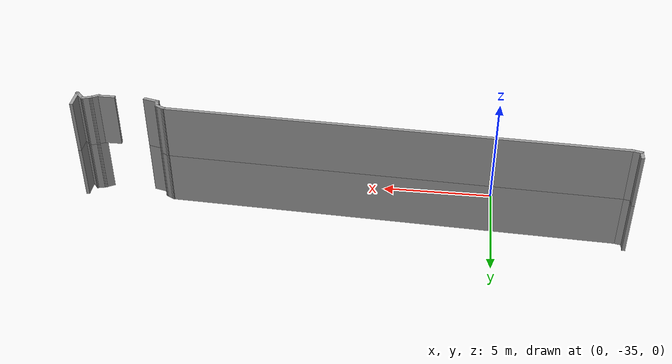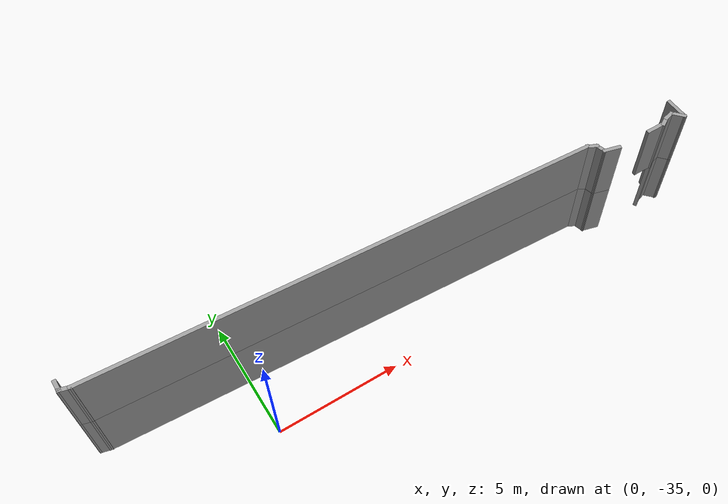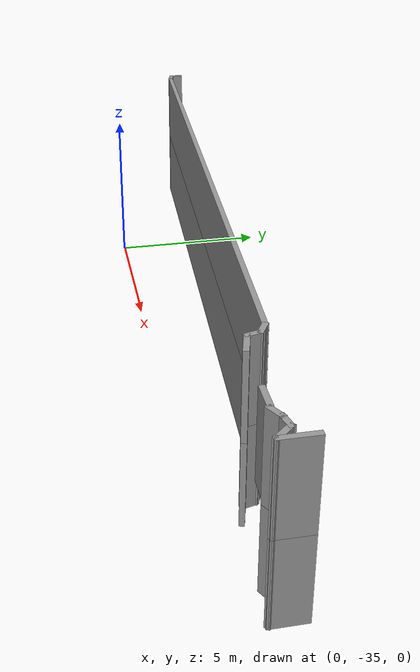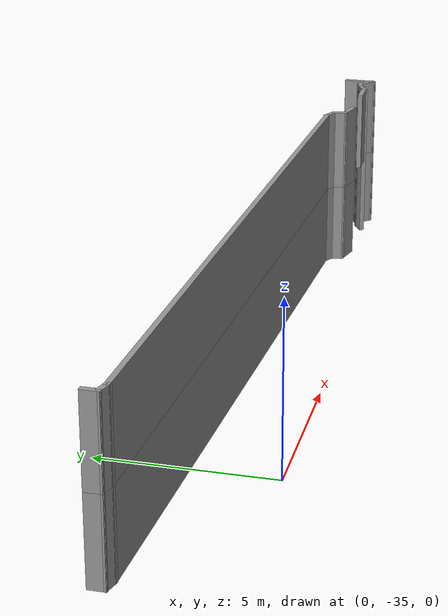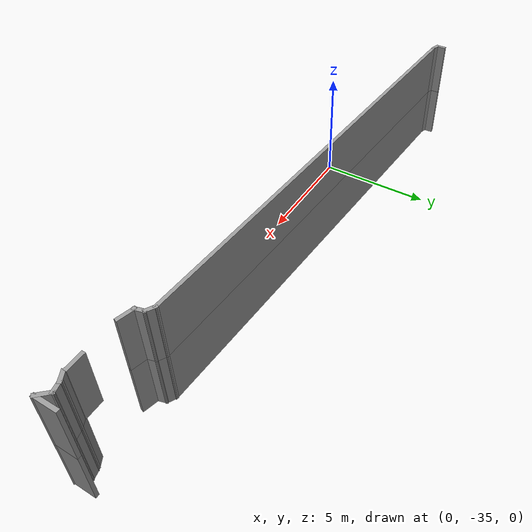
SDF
<sdf version="1.7">
 <model name="EnvDC00">
  <pose>8.4191 -5.62635 0 0 -0 0</pose>
  <link name="Wall_191">
   <collision name="Wall_191_Collision">
    <geometry><box><size>0.5 0.15 2.5</size></box></geometry>
    <pose>0 0 1.25 0 -0 0</pose>
   </collision>
   <visual name="Wall_191_Visual">
    <pose>0 0 1.25 0 -0 0</pose>
    <geometry><box><size>0.5 0.15 2.5</size></box></geometry>
    <material>
     <script><uri>file://media/materials/scripts/gazebo.material</uri><name>Gazebo/Grey</name></script>
     <ambient>1 1 1 1</ambient>
    </material>
    <meta><layer>0</layer></meta>
   </visual>
   <pose>-14.1859 -26.3878 0 0 -0 -1.5708</pose>
  </link>
  <link name="Wall_193">
   <collision name="Wall_193_Collision">
    <geometry><box><size>0.5 0.15 2.5</size></box></geometry>
    <pose>0 0 1.25 0 -0 0</pose>
   </collision>
   <visual name="Wall_193_Visual">
    <pose>0 0 1.25 0 -0 0</pose>
    <geometry><box><size>0.5 0.15 2.5</size></box></geometry>
    <material>
     <script><uri>file://media/materials/scripts/gazebo.material</uri><name>Gazebo/Grey</name></script>
     <ambient>1 1 1 1</ambient>
    </material>
    <meta><layer>0</layer></meta>
   </visual>
   <pose>-14.0168 -26.6081 0 0 -0 -0.261799</pose>
  </link>
  <link name="Wall_194">
   <collision name="Wall_194_Collision">
    <geometry><box><size>20.2208 0.15 2.5</size></box></geometry>
    <pose>0 0 1.25 0 -0 0</pose>
   </collision>
   <visual name="Wall_194_Visual">
    <pose>0 0 1.25 0 -0 0</pose>
    <geometry><box><size>20.2208 0.15 2.5</size></box></geometry>
    <material>
     <script><uri>file://media/materials/scripts/gazebo.material</uri><name>Gazebo/Grey</name></script>
     <ambient>1 1 1 1</ambient>
    </material>
    <meta><layer>0</layer></meta>
   </visual>
   <pose>-3.82435 -27.1433 0 0 -0 -0.048839</pose>
  </link>
  <link name="Wall_195">
   <collision name="Wall_195_Collision">
    <geometry><box><size>0.5 0.15 2.5</size></box></geometry>
    <pose>0 0 1.25 0 -0 0</pose>
   </collision>
   <visual name="Wall_195_Visual">
    <pose>0 0 1.25 0 -0 0</pose>
    <geometry><box><size>0.5 0.15 2.5</size></box></geometry>
    <material>
     <script><uri>file://media/materials/scripts/gazebo.material</uri><name>Gazebo/Grey</name></script>
     <ambient>1 1 1 1</ambient>
    </material>
    <meta><layer>0</layer></meta>
   </visual>
   <pose>6.35065 -27.7207 0 0 -0 -0.523599</pose>
  </link>
  <link name="Wall_197">
   <collision name="Wall_197_Collision">
    <geometry><box><size>0.5 0.15 2.5</size></box></geometry>
    <pose>0 0 1.25 0 -0 0</pose>
   </collision>
   <visual name="Wall_197_Visual">
    <pose>0 0 1.25 0 -0 0</pose>
    <geometry><box><size>0.5 0.15 2.5</size></box></geometry>
    <material>
     <script><uri>file://media/materials/scripts/gazebo.material</uri><name>Gazebo/Grey</name></script>
     <ambient>1 1 1 1</ambient>
    </material>
    <meta><layer>0</layer></meta>
   </visual>
   <pose>6.54749 -27.9773 0 0 -0 -1.309</pose>
  </link>
  <link name="Wall_198">
   <collision name="Wall_198_Collision">
    <geometry><box><size>0.75 0.15 2.5</size></box></geometry>
    <pose>0 0 1.25 0 -0 0</pose>
   </collision>
   <visual name="Wall_198_Visual">
    <pose>0 0 1.25 0 -0 0</pose>
    <geometry><box><size>0.75 0.15 2.5</size></box></geometry>
    <material>
     <script><uri>file://media/materials/scripts/gazebo.material</uri><name>Gazebo/Grey</name></script>
     <ambient>1 1 1 1</ambient>
    </material>
    <meta><layer>0</layer></meta>
   </visual>
   <pose>6.88256 -28.224 0 0 -0 -0.261799</pose>
  </link>
  <link name="Wall_203">
   <collision name="Wall_203_Collision">
    <geometry><box><size>0.5 0.15 2.5</size></box></geometry>
    <pose>0 0 1.25 0 -0 0</pose>
   </collision>
   <visual name="Wall_203_Visual">
    <pose>0 0 1.25 0 -0 0</pose>
    <geometry><box><size>0.5 0.15 2.5</size></box></geometry>
    <material>
     <script><uri>file://media/materials/scripts/gazebo.material</uri><name>Gazebo/Grey</name></script>
     <ambient>1 1 1 1</ambient>
    </material>
    <meta><layer>0</layer></meta>
   </visual>
   <pose>9.47049 -28.24 0 0 -0 0.523599</pose>
  </link>
  <link name="Wall_204">
   <collision name="Wall_204_Collision">
    <geometry><box><size>0.5 0.15 2.5</size></box></geometry>
    <pose>0 0 1.25 0 -0 0</pose>
   </collision>
   <visual name="Wall_204_Visual">
    <pose>0 0 1.25 0 -0 0</pose>
    <geometry><box><size>0.5 0.15 2.5</size></box></geometry>
    <material>
     <script><uri>file://media/materials/scripts/gazebo.material</uri><name>Gazebo/Grey</name></script>
     <ambient>1 1 1 1</ambient>
    </material>
    <meta><layer>0</layer></meta>
   </visual>
   <pose>9.79108 -28.1072 0 0 -0 0.261799</pose>
  </link>
  <link name="Wall_205">
   <collision name="Wall_205_Collision">
    <geometry><box><size>0.645839 0.15 2.5</size></box></geometry>
    <pose>0 0 1.25 0 -0 0</pose>
   </collision>
   <visual name="Wall_205_Visual">
    <pose>0 0 1.25 0 -0 0</pose>
    <geometry><box><size>0.645839 0.15 2.5</size></box></geometry>
    <material>
     <script><uri>file://media/materials/scripts/gazebo.material</uri><name>Gazebo/Grey</name></script>
     <ambient>1 1 1 1</ambient>
    </material>
    <meta><layer>0</layer></meta>
   </visual>
   <pose>10.1264 -28.2458 0 0 -0 -0.835722</pose>
  </link>
  <link name="Wall_266">
   <collision name="Wall_266_Collision">
    <geometry><box><size>1 0.15 2.5</size></box></geometry>
    <pose>0 0 1.25 0 -0 0</pose>
   </collision>
   <visual name="Wall_266_Visual">
    <pose>0 0 1.25 0 -0 0</pose>
    <geometry><box><size>1 0.15 2.5</size></box></geometry>
    <material>
     <script><uri>file://media/materials/scripts/gazebo.material</uri><name>Gazebo/Grey</name></script>
     <ambient>1 1 1 1</ambient>
    </material>
    <meta><layer>1</layer></meta>
   </visual>
   <pose>10.2926 -28.0047 2.5 0 -0 -1.5708</pose>
  </link>
  <link name="Wall_367">
   <collision name="Wall_367_Collision">
    <geometry><box><size>0.5 0.15 2.5</size></box></geometry>
    <pose>0 0 1.25 0 -0 0</pose>
   </collision>
   <visual name="Wall_367_Visual">
    <pose>0 0 1.25 0 -0 0</pose>
    <geometry><box><size>0.5 0.15 2.5</size></box></geometry>
    <material>
     <script><uri>file://media/materials/scripts/gazebo.material</uri><name>Gazebo/Grey</name></script>
     <ambient>1 1 1 1</ambient>
    </material>
    <meta><layer>1</layer></meta>
   </visual>
   <pose>-14.1859 -26.3878 2.5 0 -0 -1.5708</pose>
  </link>
  <link name="Wall_368">
   <collision name="Wall_368_Collision">
    <geometry><box><size>0.5 0.15 2.5</size></box></geometry>
    <pose>0 0 1.25 0 -0 0</pose>
   </collision>
   <visual name="Wall_368_Visual">
    <pose>0 0 1.25 0 -0 0</pose>
    <geometry><box><size>0.5 0.15 2.5</size></box></geometry>
    <material>
     <script><uri>file://media/materials/scripts/gazebo.material</uri><name>Gazebo/Grey</name></script>
     <ambient>1 1 1 1</ambient>
    </material>
    <meta><layer>1</layer></meta>
   </visual>
   <pose>-14.0168 -26.6081 2.5 0 -0 -0.261799</pose>
  </link>
  <link name="Wall_369">
   <collision name="Wall_369_Collision">
    <geometry><box><size>20.2208 0.15 2.5</size></box></geometry>
    <pose>0 0 1.25 0 -0 0</pose>
   </collision>
   <visual name="Wall_369_Visual">
    <pose>0 0 1.25 0 -0 0</pose>
    <geometry><box><size>20.2208 0.15 2.5</size></box></geometry>
    <material>
     <script><uri>file://media/materials/scripts/gazebo.material</uri><name>Gazebo/Grey</name></script>
     <ambient>1 1 1 1</ambient>
    </material>
    <meta><layer>1</layer></meta>
   </visual>
   <pose>-3.82435 -27.1433 2.5 0 -0 -0.048839</pose>
  </link>
  <link name="Wall_370">
   <collision name="Wall_370_Collision">
    <geometry><box><size>0.5 0.15 2.5</size></box></geometry>
    <pose>0 0 1.25 0 -0 0</pose>
   </collision>
   <visual name="Wall_370_Visual">
    <pose>0 0 1.25 0 -0 0</pose>
    <geometry><box><size>0.5 0.15 2.5</size></box></geometry>
    <material>
     <script><uri>file://media/materials/scripts/gazebo.material</uri><name>Gazebo/Grey</name></script>
     <ambient>1 1 1 1</ambient>
    </material>
    <meta><layer>1</layer></meta>
   </visual>
   <pose>6.35065 -27.7207 2.5 0 -0 -0.523599</pose>
  </link>
  <link name="Wall_371">
   <collision name="Wall_371_Collision">
    <geometry><box><size>0.5 0.15 2.5</size></box></geometry>
    <pose>0 0 1.25 0 -0 0</pose>
   </collision>
   <visual name="Wall_371_Visual">
    <pose>0 0 1.25 0 -0 0</pose>
    <geometry><box><size>0.5 0.15 2.5</size></box></geometry>
    <material>
     <script><uri>file://media/materials/scripts/gazebo.material</uri><name>Gazebo/Grey</name></script>
     <ambient>1 1 1 1</ambient>
    </material>
    <meta><layer>1</layer></meta>
   </visual>
   <pose>6.54749 -27.9773 2.5 0 -0 -1.309</pose>
  </link>
  <link name="Wall_372">
   <collision name="Wall_372_Collision">
    <geometry><box><size>0.75 0.15 2.5</size></box></geometry>
    <pose>0 0 1.25 0 -0 0</pose>
   </collision>
   <visual name="Wall_372_Visual">
    <pose>0 0 1.25 0 -0 0</pose>
    <geometry><box><size>0.75 0.15 2.5</size></box></geometry>
    <material>
     <script><uri>file://media/materials/scripts/gazebo.material</uri><name>Gazebo/Grey</name></script>
     <ambient>1 1 1 1</ambient>
    </material>
    <meta><layer>1</layer></meta>
   </visual>
   <pose>6.88256 -28.224 2.5 0 -0 -0.261799</pose>
  </link>
  <link name="Wall_375">
   <collision name="Wall_375_Collision">
    <geometry><box><size>0.75 0.15 2.5</size></box></geometry>
    <pose>0 0 1.25 0 -0 0</pose>
   </collision>
   <visual name="Wall_375_Visual">
    <pose>0 0 1.25 0 -0 0</pose>
    <geometry><box><size>0.75 0.15 2.5</size></box></geometry>
    <material>
     <script><uri>file://media/materials/scripts/gazebo.material</uri><name>Gazebo/Grey</name></script>
     <ambient>1 1 1 1</ambient>
    </material>
    <meta><layer>1</layer></meta>
   </visual>
   <pose>8.92234 -28.3016 2.5 0 -0 0</pose>
  </link>
  <link name="Wall_377">
   <collision name="Wall_377_Collision">
    <geometry><box><size>0.5 0.15 2.5</size></box></geometry>
    <pose>0 0 1.25 0 -0 0</pose>
   </collision>
   <visual name="Wall_377_Visual">
    <pose>0 0 1.25 0 -0 0</pose>
    <geometry><box><size>0.5 0.15 2.5</size></box></geometry>
    <material>
     <script><uri>file://media/materials/scripts/gazebo.material</uri><name>Gazebo/Grey</name></script>
     <ambient>1 1 1 1</ambient>
    </material>
    <meta><layer>1</layer></meta>
   </visual>
   <pose>9.47049 -28.24 2.5 0 -0 0.523599</pose>
  </link>
  <link name="Wall_378">
   <collision name="Wall_378_Collision">
    <geometry><box><size>0.5 0.15 2.5</size></box></geometry>
    <pose>0 0 1.25 0 -0 0</pose>
   </collision>
   <visual name="Wall_378_Visual">
    <pose>0 0 1.25 0 -0 0</pose>
    <geometry><box><size>0.5 0.15 2.5</size></box></geometry>
    <material>
     <script><uri>file://media/materials/scripts/gazebo.material</uri><name>Gazebo/Grey</name></script>
     <ambient>1 1 1 1</ambient>
    </material>
    <meta><layer>1</layer></meta>
   </visual>
   <pose>9.79108 -28.1072 2.5 0 -0 0.261799</pose>
  </link>
  <link name="Wall_379">
   <collision name="Wall_379_Collision">
    <geometry><box><size>0.645839 0.15 2.5</size></box></geometry>
    <pose>0 0 1.25 0 -0 0</pose>
   </collision>
   <visual name="Wall_379_Visual">
    <pose>0 0 1.25 0 -0 0</pose>
    <geometry><box><size>0.645839 0.15 2.5</size></box></geometry>
    <material>
     <script><uri>file://media/materials/scripts/gazebo.material</uri><name>Gazebo/Grey</name></script>
     <ambient>1 1 1 1</ambient>
    </material>
    <meta><layer>1</layer></meta>
   </visual>
   <pose>10.1264 -28.2458 2.5 0 -0 -0.835722</pose>
  </link>
  <link name="Wall_41">
   <collision name="Wall_41_Collision">
    <geometry><box><size>1 0.15 2.5</size></box></geometry>
    <pose>0 0 1.25 0 -0 0</pose>
   </collision>
   <visual name="Wall_41_Visual">
    <pose>0 0 1.25 0 -0 0</pose>
    <geometry><box><size>1 0.15 2.5</size></box></geometry>
    <material>
     <script><uri>file://media/materials/scripts/gazebo.material</uri><name>Gazebo/Grey</name></script>
     <ambient>1 1 1 1</ambient>
    </material>
    <meta><layer>0</layer></meta>
   </visual>
   <pose>10.2926 -28.0047 0 0 -0 -1.5708</pose>
  </link>
  <static>1</static>
 </model>
</sdf>
